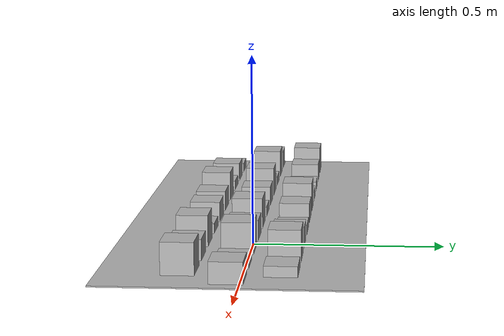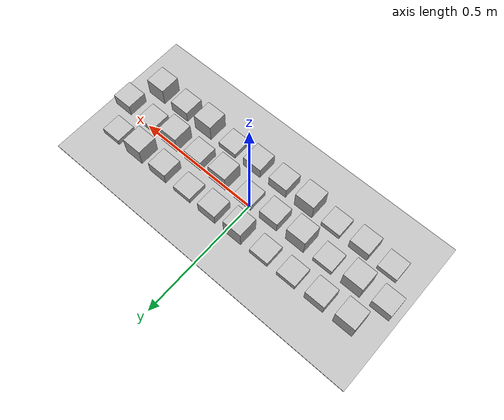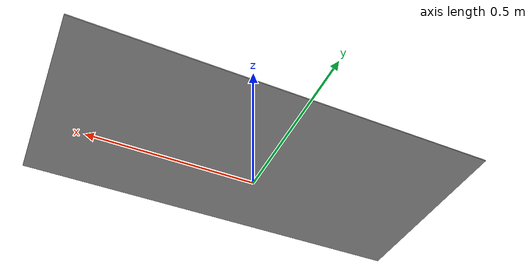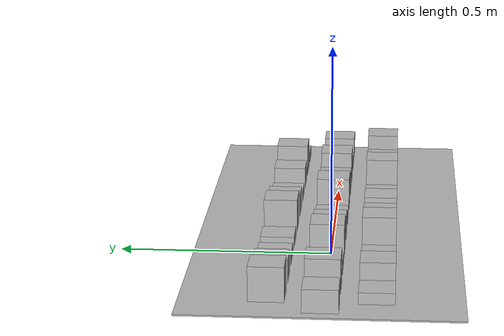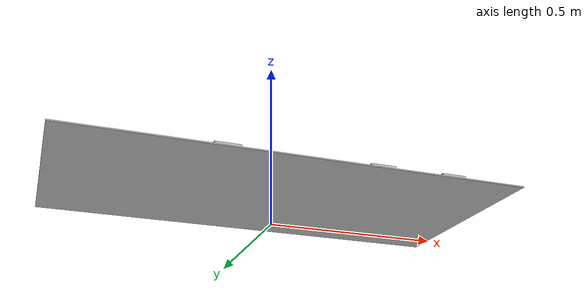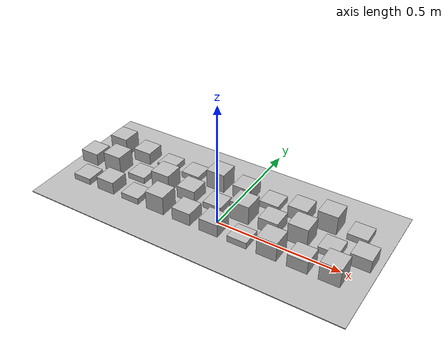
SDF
<?xml version="1.0" ?>
<sdf version="1.5">
  <model name="frc2016_roughterrain">
    <static>true</static>

    <link name="link">
      <visual name="platform">
        <pose>0 0 0.08269 0 0 0</pose>
        <geometry>
          <box>
            <size>1.27 0.5969 0.003175</size>
          </box>
        </geometry>
      </visual>
      <collision name="platform">
        <pose>0 0 0.08269 0 0 0</pose>
        <geometry>
          <box>
            <size>1.27 0.5969 0.003175</size>
          </box>
        </geometry>
      </collision>

      <visual name="row1_block1_sm">
        <pose>0.51435 0.11430 0.09698 0 0 0</pose>
        <geometry>
          <box>
            <size>0.0762 0.0762 0.0254</size>
          </box>
        </geometry>
      </visual>
      <collision name="row1_block1_sm">
        <pose>0.51435 0.11430 0.09698 0 0 0</pose>
        <geometry>
          <box>
            <size>0.0762 0.0762 0.0254</size>
          </box>
        </geometry>
      </collision>

      <visual name="row1_block2_lg">
        <pose>0.40005 0.11430 0.12238 0 0 0</pose>
        <geometry>
          <box>
            <size>0.0762 0.0762 0.0762</size>
          </box>
        </geometry>
      </visual>
      <collision name="row1_block2_lg">
        <pose>0.40005 0.11430 0.12238 0 0 0</pose>
        <geometry>
          <box>
            <size>0.0762 0.0762 0.0762</size>
          </box>
        </geometry>
      </collision>

      <visual name="row1_block3_md">
        <pose>0.28575 0.11430 0.10968 0 0 0</pose>
        <geometry>
          <box>
            <size>0.0762 0.0762 0.0508</size>
          </box>
        </geometry>
      </visual>
      <collision name="row1_block3_md">
        <pose>0.28575 0.11430 0.10968 0 0 0</pose>
        <geometry>
          <box>
            <size>0.0762 0.0762 0.0508</size>
          </box>
        </geometry>
      </collision>

      <visual name="row1_block4_sm">
        <pose>0.17145 0.11430 0.09698 0 0 0</pose>
        <geometry>
          <box>
            <size>0.0762 0.0762 0.0254</size>
          </box>
        </geometry>
      </visual>
      <collision name="row1_block4_sm">
        <pose>0.17145 0.11430 0.09698 0 0 0</pose>
        <geometry>
          <box>
            <size>0.0762 0.0762 0.0254</size>
          </box>
        </geometry>
      </collision>

      <visual name="row1_block5_md">
        <pose>0.05715 0.11430 0.10968 0 0 0</pose>
        <geometry>
          <box>
            <size>0.0762 0.0762 0.0508</size>
          </box>
        </geometry>
      </visual>
      <collision name="row1_block5_md">
        <pose>0.05715 0.11430 0.10968 0 0 0</pose>
        <geometry>
          <box>
            <size>0.0762 0.0762 0.0508</size>
          </box>
        </geometry>
      </collision>

      <visual name="row1_block6_lg">
        <pose>-0.05715 0.11430 0.12238 0 0 0</pose>
        <geometry>
          <box>
            <size>0.0762 0.0762 0.0762</size>
          </box>
        </geometry>
      </visual>
      <collision name="row1_block6_lg">
        <pose>-0.05715 0.11430 0.12238 0 0 0</pose>
        <geometry>
          <box>
            <size>0.0762 0.0762 0.0762</size>
          </box>
        </geometry>
      </collision>

      <visual name="row1_block7_sm">
        <pose>-0.17145 0.11430 0.09698 0 0 0</pose>
        <geometry>
          <box>
            <size>0.0762 0.0762 0.0254</size>
          </box>
        </geometry>
      </visual>
      <collision name="row1_block7_sm">
        <pose>-0.17145 0.11430 0.09698 0 0 0</pose>
        <geometry>
          <box>
            <size>0.0762 0.0762 0.0254</size>
          </box>
        </geometry>
      </collision>

      <visual name="row1_block8_sm">
        <pose>-0.28575 0.11430 0.09698 0 0 0</pose>
        <geometry>
          <box>
            <size>0.0762 0.0762 0.0254</size>
          </box>
        </geometry>
      </visual>
      <collision name="row1_block8_sm">
        <pose>-0.28575 0.11430 0.09698 0 0 0</pose>
        <geometry>
          <box>
            <size>0.0762 0.0762 0.0254</size>
          </box>
        </geometry>
      </collision>

      <visual name="row1_block9_md">
        <pose>-0.40005 0.11430 0.10968 0 0 0</pose>
        <geometry>
          <box>
            <size>0.0762 0.0762 0.0508</size>
          </box>
        </geometry>
      </visual>
      <collision name="row1_block9_md">
        <pose>-0.40005 0.11430 0.10968 0 0 0</pose>
        <geometry>
          <box>
            <size>0.0762 0.0762 0.0508</size>
          </box>
        </geometry>
      </collision>

      <visual name="row1_block10_lg">
        <pose>-0.51435 0.11430 0.12238 0 0 0</pose>
        <geometry>
          <box>
            <size>0.0762 0.0762 0.0762</size>
          </box>
        </geometry>
      </visual>
      <collision name="row1_block10_lg">
        <pose>-0.51435 0.11430 0.12238 0 0 0</pose>
        <geometry>
          <box>
            <size>0.0762 0.0762 0.0762</size>
          </box>
        </geometry>
      </collision>

      <!-- Row 2 -->
      <visual name="row2_block1_md">
        <pose>0.5715 0 0.10968 0 0 0</pose>
        <geometry>
          <box>
            <size>0.0762 0.0762 0.0508</size>
          </box>
        </geometry>
      </visual>
      <collision name="row2_block1_md">
        <pose>0.5715 0 0.10968 0 0 0</pose>
        <geometry>
          <box>
            <size>0.0762 0.0762 0.0508</size>
          </box>
        </geometry>
      </collision>

      <visual name="row2_block2_sm">
        <pose>0.45720 0 0.09698 0 0 0</pose>
        <geometry>
          <box>
            <size>0.0762 0.0762 0.0254</size>
          </box>
        </geometry>
      </visual>
      <collision name="row2_block2_sm">
        <pose>0.45720 0 0.09698 0 0 0</pose>
        <geometry>
          <box>
            <size>0.0762 0.0762 0.0254</size>
          </box>
        </geometry>
      </collision>

      <visual name="row2_block3_lg">
        <pose>0.3429 0 0.12238 0 0 0</pose>
        <geometry>
          <box>
            <size>0.0762 0.0762 0.0762</size>
          </box>
        </geometry>
      </visual>
      <collision name="row2_block3_lg">
        <pose>0.3429 0 0.12238 0 0 0</pose>
        <geometry>
          <box>
            <size>0.0762 0.0762 0.0762</size>
          </box>
        </geometry>
      </collision>

      <visual name="row2_block4_md">
        <pose>0.2286 0 0.10968 0 0 0</pose>
        <geometry>
          <box>
            <size>0.0762 0.0762 0.0508</size>
          </box>
        </geometry>
      </visual>
      <collision name="row2_block4_md">
        <pose>0.2286 0 0.10968 0 0 0</pose>
        <geometry>
          <box>
            <size>0.0762 0.0762 0.0508</size>
          </box>
        </geometry>
      </collision>

      <visual name="row2_block5_lg">
        <pose>0.1143 0 0.12238 0 0 0</pose>
        <geometry>
          <box>
            <size>0.0762 0.0762 0.0762</size>
          </box>
        </geometry>
      </visual>
      <collision name="row2_block5_lg">
        <pose>0.1143 0 0.12238 0 0 0</pose>
        <geometry>
          <box>
            <size>0.0762 0.0762 0.0762</size>
          </box>
        </geometry>
      </collision>

      <visual name="row2_block6_sm">
        <pose>0 0 0.09698 0 0 0</pose>
        <geometry>
          <box>
            <size>0.0762 0.0762 0.0254</size>
          </box>
        </geometry>
      </visual>
      <collision name="row2_block6_sm">
        <pose>0 0 0.09698 0 0 0</pose>
        <geometry>
          <box>
            <size>0.0762 0.0762 0.0254</size>
          </box>
        </geometry>
      </collision>

      <visual name="row2_block7_md">
        <pose>-0.1143 0 0.10968 0 0 0</pose>
        <geometry>
          <box>
            <size>0.0762 0.0762 0.0508</size>
          </box>
        </geometry>
      </visual>
      <collision name="row2_block7_md">
        <pose>-0.1143 0 0.10968 0 0 0</pose>
        <geometry>
          <box>
            <size>0.0762 0.0762 0.0508</size>
          </box>
        </geometry>
      </collision>

      <visual name="row2_block8_lg">
        <pose>-0.2286 0 0.12238 0 0 0</pose>
        <geometry>
          <box>
            <size>0.0762 0.0762 0.0762</size>
          </box>
        </geometry>
      </visual>
      <collision name="row2_block8_lg">
        <pose>-0.2286 0 0.12238 0 0 0</pose>
        <geometry>
          <box>
            <size>0.0762 0.0762 0.0762</size>
          </box>
        </geometry>
      </collision>

      <visual name="row2_block9_sm">
        <pose>-0.3429 0 0.09698 0 0 0</pose>
        <geometry>
          <box>
            <size>0.0762 0.0762 0.0254</size>
          </box>
        </geometry>
      </visual>
      <collision name="row2_block9_sm">
        <pose>-0.3429 0 0.09698 0 0 0</pose>
        <geometry>
          <box>
            <size>0.0762 0.0762 0.0254</size>
          </box>
        </geometry>
      </collision>

      <visual name="row2_block10_lg">
        <pose>-0.4572 0 0.12238 0 0 0</pose>
        <geometry>
          <box>
            <size>0.0762 0.0762 0.0762</size>
          </box>
        </geometry>
      </visual>
      <collision name="row2_block10_lg">
        <pose>-0.4572 0 0.12238 0 0 0</pose>
        <geometry>
          <box>
            <size>0.0762 0.0762 0.0762</size>
          </box>
        </geometry>
      </collision>

      <visual name="row2_block11_md">
        <pose>-0.5715 0 0.10968 0 0 0</pose>
        <geometry>
          <box>
            <size>0.0762 0.0762 0.0508</size>
          </box>
        </geometry>
      </visual>
      <collision name="row2_block11_md">
        <pose>-0.5715 0 0.10968 0 0 0</pose>
        <geometry>
          <box>
            <size>0.0762 0.0762 0.0508</size>
          </box>
        </geometry>
      </collision>

      <!-- Row 3 -->
      <visual name="row3_block1_lg">
        <pose>0.51435 -0.1143 0.12238 0 0 0</pose>
        <geometry>
          <box>
            <size>0.0762 0.0762 0.0762</size>
          </box>
        </geometry>
      </visual>
      <collision name="row3_block1_lg">
        <pose>0.51435 -0.1143 0.12238 0 0 0</pose>
        <geometry>
          <box>
            <size>0.0762 0.0762 0.0762</size>
          </box>
        </geometry>
      </collision>

      <visual name="row3_block2_md">
        <pose>0.40005 -0.1143 0.10968 0 0 0</pose>
        <geometry>
          <box>
            <size>0.0762 0.0762 0.0508</size>
          </box>
        </geometry>
      </visual>
      <collision name="row3_block2_md">
        <pose>0.40005 -0.1143 0.10968 0 0 0</pose>
        <geometry>
          <box>
            <size>0.0762 0.0762 0.0508</size>
          </box>
        </geometry>
      </collision>

      <visual name="row3_block3_lg">
        <pose>0.28575 -0.1143 0.12238 0 0 0</pose>
        <geometry>
          <box>
            <size>0.0762 0.0762 0.0762</size>
          </box>
        </geometry>
      </visual>
      <collision name="row3_block3_lg">
        <pose>0.28575 -0.1143 0.12238 0 0 0</pose>
        <geometry>
          <box>
            <size>0.0762 0.0762 0.0762</size>
          </box>
        </geometry>
      </collision>

      <visual name="row3_block4_sm">
        <pose>0.17145 -0.11430 0.09698 0 0 0</pose>
        <geometry>
          <box>
            <size>0.0762 0.0762 0.0254</size>
          </box>
        </geometry>
      </visual>
      <collision name="row3_block4_sm">
        <pose>0.17145 -0.11430 0.09698 0 0 0</pose>
        <geometry>
          <box>
            <size>0.0762 0.0762 0.0254</size>
          </box>
        </geometry>
      </collision>

      <visual name="row3_block5_md">
        <pose>0.05715 -0.11430 0.10968 0 0 0</pose>
        <geometry>
          <box>
            <size>0.0762 0.0762 0.0508</size>
          </box>
        </geometry>
      </visual>
      <collision name="row3_block5_md">
        <pose>0.05715 -0.1143 0.10968 0 0 0</pose>
        <geometry>
          <box>
            <size>0.0762 0.0762 0.0508</size>
          </box>
        </geometry>
      </collision>

      <visual name="row3_block6_md">
        <pose>-0.05715 -0.11430 0.10968 0 0 0</pose>
        <geometry>
          <box>
            <size>0.0762 0.0762 0.0508</size>
          </box>
        </geometry>
      </visual>
      <collision name="row3_block6_md">
        <pose>-0.05715 -0.1143 0.10968 0 0 0</pose>
        <geometry>
          <box>
            <size>0.0762 0.0762 0.0508</size>
          </box>
        </geometry>
      </collision>

      <visual name="row3_block7_lg">
        <pose>-0.17145 -0.1143 0.12238 0 0 0</pose>
        <geometry>
          <box>
            <size>0.0762 0.0762 0.0762</size>
          </box>
        </geometry>
      </visual>
      <collision name="row3_block7_lg">
        <pose>-0.17145 -0.1143 0.12238 0 0 0</pose>
        <geometry>
          <box>
            <size>0.0762 0.0762 0.0762</size>
          </box>
        </geometry>
      </collision>

      <visual name="row3_block8_sm">
        <pose>-0.28575 -0.11430 0.09698 0 0 0</pose>
        <geometry>
          <box>
            <size>0.0762 0.0762 0.0254</size>
          </box>
        </geometry>
      </visual>
      <collision name="row3_block8_sm">
        <pose>-0.28575 -0.11430 0.09698 0 0 0</pose>
        <geometry>
          <box>
            <size>0.0762 0.0762 0.0254</size>
          </box>
        </geometry>
      </collision>

      <visual name="row3_block9_md">
        <pose>-0.40005 -0.11430 0.10968 0 0 0</pose>
        <geometry>
          <box>
            <size>0.0762 0.0762 0.0508</size>
          </box>
        </geometry>
      </visual>
      <collision name="row3_block9_md">
        <pose>-0.40005 -0.1143 0.10968 0 0 0</pose>
        <geometry>
          <box>
            <size>0.0762 0.0762 0.0508</size>
          </box>
        </geometry>
      </collision>

      <visual name="row3_block10_sm">
        <pose>-0.51435 -0.11430 0.09698 0 0 0</pose>
        <geometry>
          <box>
            <size>0.0762 0.0762 0.0254</size>
          </box>
        </geometry>
      </visual>
      <collision name="row3_block10_sm">
        <pose>-0.51435 -0.11430 0.09698 0 0 0</pose>
        <geometry>
          <box>
            <size>0.0762 0.0762 0.0254</size>
          </box>
        </geometry>
      </collision>
    </link>
  </model>
</sdf>
